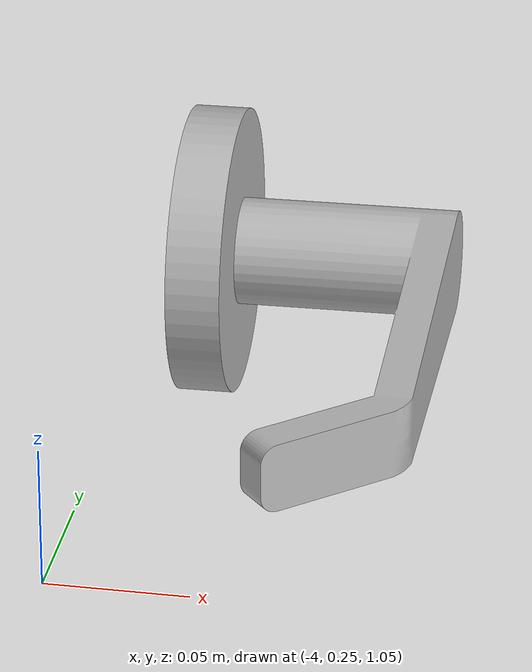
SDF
<?xml version='1.0'?>
<sdf version='1.6'>
  <model name='Door_n_handle'>
    <model name='door_handle'>
      <link name='handle'>
        <collision name='collision'>
          <geometry>
            <mesh>
              <uri>model://door_handle/meshes/door_handle.dae</uri>
            </mesh>
          </geometry>
        </collision>
        <visual name='visual'>
          <geometry>
            <mesh>
              <uri>model://door_handle/meshes/door_handle.dae</uri>
            </mesh>
          </geometry>
        </visual>
      </link>
      <pose frame=''>-3.97821 0.39952 1.10484 -1.56883 -0.005707 -1.55354</pose>
    </model>
    <static>0</static>
    <allow_auto_disable>1</allow_auto_disable>
  </model>
</sdf>
